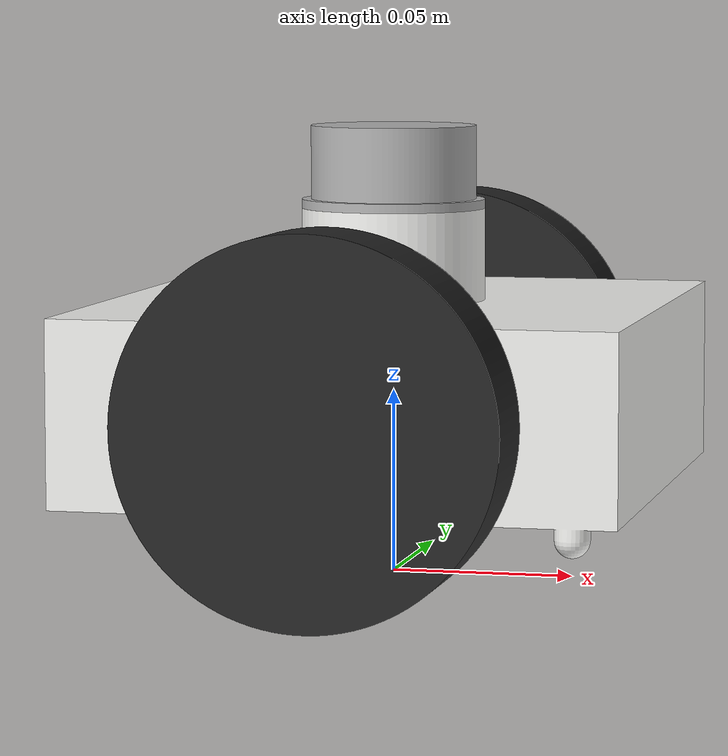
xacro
<?xml version="1.0" ?>
<robot name="wheely" xmlns:xacro="http://www.ros.org/wiki/xacro">

<xacro:include filename="$(find wheely_description)/urdf/materials.xacro" />
<xacro:include filename="$(find wheely_description)/urdf/wheely.trans" />
<xacro:include filename="$(find wheely_description)/urdf/wheely.gazebo" />
<link name="base_link">
  <inertial>
    <origin rpy="0 0 0" xyz="1.545488639621925e-17 1.3795088508206209e-15 0.051480308846042926"/>
    <mass value="1.6477540498693837"/>
    <inertia ixx="0.003393" ixy="-0.0" ixz="0.0" iyy="0.003404" iyz="0.0" izz="0.005938"/>
  </inertial>
  <visual>
    <origin rpy="0 0 0" xyz="0 0 0"/>
    <geometry>
      <mesh filename="package://wheely_description/meshes/base_link.stl" scale="0.001 0.001 0.001"/>
    </geometry>
    <material name="plastic_glossy_white"/>
  </visual>
  <collision>
    <origin rpy="0 0 0" xyz="0 0 0"/>
    <geometry>
      <mesh filename="package://wheely_description/meshes/base_link.stl" scale="0.001 0.001 0.001"/>
    </geometry>
  </collision>
</link>

<link name="LIDAR_1">
  <inertial>
    <origin rpy="0 0 0" xyz="-3.226802273235357e-17 -2.1315391519574705e-17 0.010995989304812812"/>
    <mass value="0.046998226097703315"/>
    <inertia ixx="8e-06" ixy="-0.0" ixz="0.0" iyy="8e-06" iyz="0.0" izz="1.2e-05"/>
  </inertial>
  <visual>
    <origin rpy="0 0 0" xyz="-0.0 0.0 -0.1"/>
    <geometry>
      <mesh filename="package://wheely_description/meshes/LIDAR_1.stl" scale="0.001 0.001 0.001"/>
    </geometry>
    <material name="plastic_glossy_grey"/>
  </visual>
  <collision>
    <origin rpy="0 0 0" xyz="-0.0 0.0 -0.1"/>
    <geometry>
      <mesh filename="package://wheely_description/meshes/LIDAR_1.stl" scale="0.001 0.001 0.001"/>
    </geometry>
  </collision>
</link>

<link name="right_wheel_1">
  <inertial>
    <origin rpy="0 0 0" xyz="1.5103871126513457e-18 -0.01250000000000008 1.3877787807814457e-17"/>
    <mass value="0.18260507298990675"/>
    <inertia ixx="0.000124" ixy="0.0" ixz="-0.0" iyy="0.000228" iyz="-0.0" izz="0.000124"/>
  </inertial>
  <visual>
    <origin rpy="0 0 0" xyz="-0.0 0.075 -0.05"/>
    <geometry>
      <mesh filename="package://wheely_description/meshes/right_wheel_1.stl" scale="0.001 0.001 0.001"/>
    </geometry>
    <material name="rubber_soft"/>
  </visual>
  <collision>
    <origin rpy="0 0 0" xyz="-0.0 0.075 -0.05"/>
    <geometry>
      <mesh filename="package://wheely_description/meshes/right_wheel_1.stl" scale="0.001 0.001 0.001"/>
    </geometry>
  </collision>
</link>

<link name="left_wheel_1">
  <inertial>
    <origin rpy="0 0 0" xyz="-1.3090433312895435e-17 0.012499999999999983 3.469446951953614e-17"/>
    <mass value="0.18260507298990675"/>
    <inertia ixx="0.000124" ixy="0.0" ixz="-0.0" iyy="0.000228" iyz="0.0" izz="0.000124"/>
  </inertial>
  <visual>
    <origin rpy="0 0 0" xyz="0.0 -0.075 -0.05"/>
    <geometry>
      <mesh filename="package://wheely_description/meshes/left_wheel_1.stl" scale="0.001 0.001 0.001"/>
    </geometry>
    <material name="rubber_soft"/>
  </visual>
  <collision>
    <origin rpy="0 0 0" xyz="0.0 -0.075 -0.05"/>
    <geometry>
      <mesh filename="package://wheely_description/meshes/left_wheel_1.stl" scale="0.001 0.001 0.001"/>
    </geometry>
  </collision>
</link>

<joint name="lidar_rot" type="continuous">
  <origin rpy="0 0 0" xyz="0.0 0.0 0.1"/>
  <parent link="base_link"/>
  <child link="LIDAR_1"/>
  <axis xyz="0.0 -0.0 1.0"/>
</joint>

<joint name="right_drive" type="continuous">
  <origin rpy="0 0 0" xyz="0.0 -0.075 0.05"/>
  <parent link="base_link"/>
  <child link="right_wheel_1"/>
  <axis xyz="0.0 1.0 -0.0"/>
</joint>

<joint name="left_drive" type="continuous">
  <origin rpy="0 0 0" xyz="0.0 0.075 0.05"/>
  <parent link="base_link"/>
  <child link="left_wheel_1"/>
  <axis xyz="-0.0 1.0 0.0"/>
</joint>

</robot>

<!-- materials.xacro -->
<robot name="wheely" xmlns:xacro="http://www.ros.org/wiki/xacro" >

<material name="silver_default">
  <color rgba="0.700 0.700 0.700 1.000"/>
</material>
<material name="plastic_glossy_white">
  <color rgba="0.9647058823529412 0.9647058823529412 0.9529411764705882 1.0"/>
</material>
<material name="rubber_soft">
  <color rgba="0.15294117647058825 0.15294117647058825 0.15294117647058825 1.0"/>
</material>
<material name="plastic_glossy_grey">
  <color rgba="0.7019607843137254 0.7019607843137254 0.7019607843137254 1.0"/>
</material>

</robot>

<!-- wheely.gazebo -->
<robot name="wheely" xmlns:xacro="http://www.ros.org/wiki/xacro" >

<xacro:property name="body_color" value="Gazebo/Silver" />

<gazebo>
  <plugin filename="libgazebo_ros_control.so" name="control"/>
</gazebo>
<gazebo reference="base_link">
  <material>${body_color}</material>
  <mu1>0.2</mu1>
  <mu2>0.2</mu2>
  <selfCollide>true</selfCollide>
  <gravity>true</gravity>
</gazebo>

<gazebo reference="LIDAR_1">
  <material>${body_color}</material>
  <mu1>0.2</mu1>
  <mu2>0.2</mu2>
  <selfCollide>true</selfCollide>
</gazebo>

<gazebo reference="right_wheel_1">
  <material>${body_color}</material>
  <mu1>0.2</mu1>
  <mu2>0.2</mu2>
  <selfCollide>true</selfCollide>
</gazebo>

<gazebo reference="left_wheel_1">
  <material>${body_color}</material>
  <mu1>0.2</mu1>
  <mu2>0.2</mu2>
  <selfCollide>true</selfCollide>
</gazebo>
<gazebo>
  <plugin name="differential_drive_controller" filename="libgazebo_ros_diff_drive.so">

    <!-- Plugin update rate in Hz -->
    <updateRate>50</updateRate>

    <!-- Name of left joint, defaults to `left_joint` -->
    <leftJoint>left_drive</leftJoint>

    <!-- Name of right joint, defaults to `right_joint` -->
    <rightJoint>right_drive</rightJoint>

    <!-- The distance from the center of one wheel to the other, in meters, defaults to 0.34 m -->
    <wheelSeparation>0.15</wheelSeparation>

    <!-- Diameter of the wheels, in meters, defaults to 0.15 m -->
    <wheelDiameter>0.1</wheelDiameter>

    <!-- Wheel acceleration, in rad/s^2, defaults to 0.0 rad/s^2 -->
    <wheelAcceleration>1.0</wheelAcceleration>

    <!-- Maximum torque which the wheels can produce, in Nm, defaults to 5 Nm -->
    <wheelTorque>20</wheelTorque>

    <!-- Topic to receive geometry_msgs/Twist message commands, defaults to `cmd_vel` -->
    <commandTopic>cmd_vel</commandTopic>

    <!-- Topic to publish nav_msgs/Odometry messages, defaults to `odom` -->
    <odometryTopic>odom</odometryTopic>

    <!-- Odometry frame, defaults to `odom` -->
    <odometryFrame>odom</odometryFrame>

    <!-- Robot frame to calculate odometry from, defaults to `base_footprint` -->
    <robotBaseFrame>base_link</robotBaseFrame>

    <!-- Odometry source, 0 for ENCODER, 1 for WORLD, defaults to WORLD -->
    <odometrySource>1</odometrySource>

    <!-- Set to true to publish transforms for the wheel links, defaults to false -->
    <publishWheelTF>false</publishWheelTF>

    <!-- Set to true to publish transforms for the odometry, defaults to true -->
    <publishOdom>true</publishOdom>

    <!-- Set to true to publish sensor_msgs/JointState on /joint_states for the wheel joints, defaults to false -->
    <publishWheelJointState>false</publishWheelJointState>

    <!-- Set to true to swap right and left wheels, defaults to true -->
    <legacyMode>false</legacyMode>
  </plugin>
</gazebo>

 <gazebo reference="LIDAR_1">
    <sensor type="ray" name="head_hokuyo_sensor">
      <pose>0 0 0 0 0 0</pose>
      <visualize>true</visualize>
      <update_rate>40</update_rate>
      <ray>
        <scan>
          <horizontal>
            <samples>720</samples>
            <resolution>1</resolution>
            <min_angle>-1.570796</min_angle>
            <max_angle>1.570796</max_angle>
          </horizontal>
        </scan>
        <range>
          <min>0.10</min>
          <max>30.0</max>
          <resolution>0.01</resolution>
        </range>
        <noise>
          <type>gaussian</type>
          <mean>0.0</mean>
          <stddev>0.01</stddev>
        </noise>
      </ray>
      <plugin name="gazebo_ros_head_hokuyo_controller" filename="libgazebo_ros_laser.so">
        <topicName>/scan</topicName>
        <frameName>LIDAR_1</frameName>
      </plugin>
    </sensor>
  </gazebo>
</robot>
